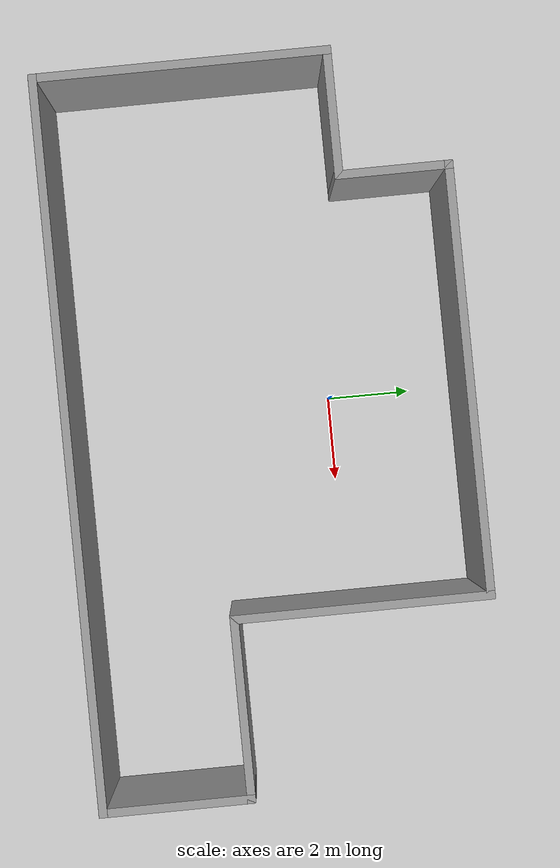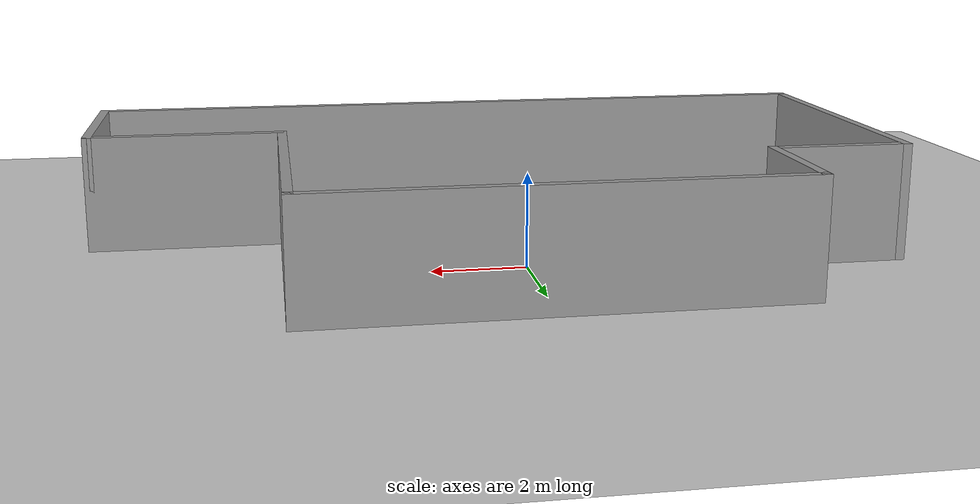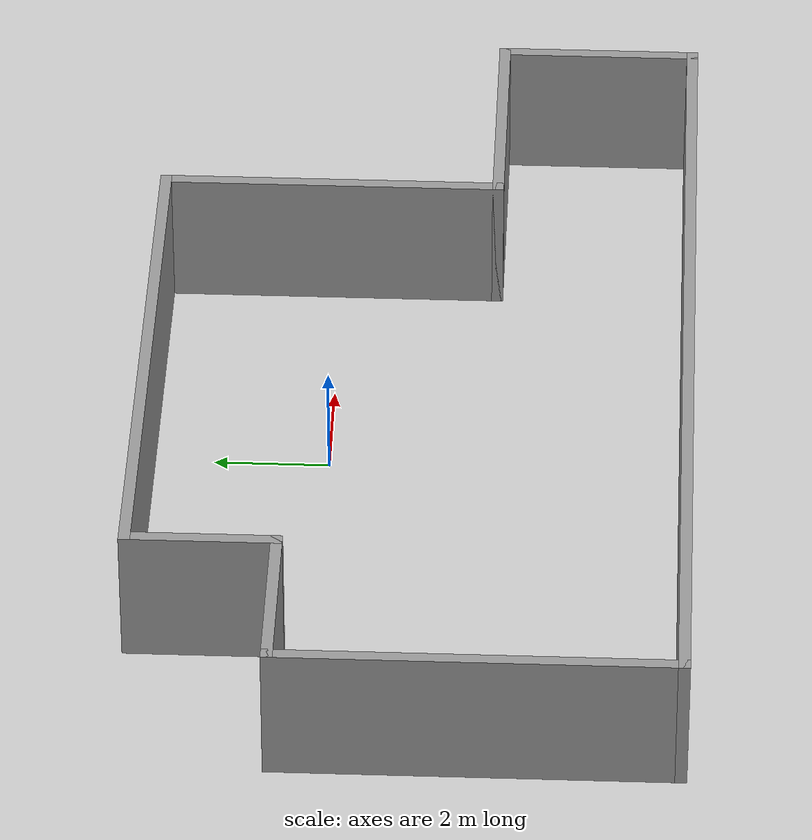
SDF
<sdf version="1.3">
 <world name="default">
  <light name="sun" type="directional">
   <pose>0.000000 0.000000 10.000000 0.000000 0.000000 0.000000</pose>
   <diffuse>0.800000 0.800000 0.800000 1.000000</diffuse>
   <specular>0.100000 0.100000 0.100000 1.000000</specular>
   <attenuation>
    <range>1000.000000</range>
    <constant>0.900000</constant>
    <linear>0.010000</linear>
    <quadratic>0.001000</quadratic>
   </attenuation>
   <direction>-0.500000 0.500000 -1.000000</direction>
  </light>
  <model name="ground_plane">
   <static>1</static>
   <link name="link">
    <collision name="collision">
     <geometry>
      <plane><normal>0.000000 0.000000 1.000000</normal><size>100.000000 100.000000</size></plane>
     </geometry>
     <surface><friction><ode><mu>100.000000</mu><mu2>50.000000</mu2></ode></friction></surface>
    </collision>
    <visual name="visual">
     <cast_shadows>0</cast_shadows>
     <geometry>
      <plane><normal>0.000000 0.000000 1.000000</normal><size>100.000000 100.000000</size></plane>
     </geometry>
     <material>
      <script><uri>file://media/materials/scripts/gazebo.material</uri><name>Gazebo/Grey</name></script>
     </material>
    </visual>
    <velocity_decay><linear>0.000000</linear><angular>0.000000</angular></velocity_decay>
   </link>
  </model>
  <physics type="ode">
   <update_rate>1000.000000</update_rate>
   <gravity>0.000000 0.000000 -9.800000</gravity>
  </physics>
  <scene>
   <ambient>0.200000 0.200000 0.200000 1.000000</ambient>
   <background>0.700000 0.700000 0.700000 1.000000</background>
   <shadows>1</shadows>
  </scene>
  <model name="simple">
   <link name="Wall_1">
    <collision name="Wall_1_Collision">
     <geometry><box><size>10.120400 0.200000 2.500000</size></box></geometry>
     <pose>0.000000 0.000000 1.250000 0.000000 0.000000 0.000000</pose>
    </collision>
    <visual name="Wall_1_Visual">
     <pose>0.000000 0.000000 1.250000 0.000000 0.000000 0.000000</pose>
     <geometry><box><size>10.120400 0.200000 2.500000</size></box></geometry>
     <material>
      <script><uri>file://media/materials/scripts/gazebo.material</uri><name>Gazebo/Grey</name></script>
     </material>
    </visual>
    <velocity_decay><linear>0.000000</linear><angular>0.000000</angular></velocity_decay>
    <pose>-0.058949 3.136090 0.000000 0.000000 0.000000 0.000000</pose>
   </link>
   <link name="Wall_2">
    <collision name="Wall_2_Collision">
     <geometry><box><size>6.110030 0.200000 2.500000</size></box></geometry>
     <pose>0.000000 0.000000 1.250000 0.000000 0.000000 0.000000</pose>
    </collision>
    <visual name="Wall_2_Visual">
     <pose>0.000000 0.000000 1.250000 0.000000 0.000000 0.000000</pose>
     <geometry><box><size>6.110030 0.200000 2.500000</size></box></geometry>
     <material>
      <script><uri>file://media/materials/scripts/gazebo.material</uri><name>Gazebo/Grey</name></script>
     </material>
    </visual>
    <velocity_decay><linear>0.000000</linear><angular>0.000000</angular></velocity_decay>
    <pose>4.901260 0.181073 0.000000 0.000000 0.000000 -1.570800</pose>
   </link>
   <link name="Wall_3">
    <collision name="Wall_3_Collision">
     <geometry><box><size>4.315920 0.200000 2.500000</size></box></geometry>
     <pose>0.000000 0.000000 1.250000 0.000000 0.000000 0.000000</pose>
    </collision>
    <visual name="Wall_3_Visual">
     <pose>0.000000 0.000000 1.250000 0.000000 0.000000 0.000000</pose>
     <geometry><box><size>4.315920 0.200000 2.500000</size></box></geometry>
     <material>
      <script><uri>file://media/materials/scripts/gazebo.material</uri><name>Gazebo/Grey</name></script>
     </material>
    </visual>
    <velocity_decay><linear>0.000000</linear><angular>0.000000</angular></velocity_decay>
    <pose>6.959210 -2.773940 0.000000 0.000000 0.000000 0.000000</pose>
   </link>
   <link name="Wall_4">
    <collision name="Wall_4_Collision">
     <geometry><box><size>3.612340 0.200000 2.500000</size></box></geometry>
     <pose>0.000000 0.000000 1.250000 0.000000 0.000000 0.000000</pose>
    </collision>
    <visual name="Wall_4_Visual">
     <pose>0.000000 0.000000 1.250000 0.000000 0.000000 0.000000</pose>
     <geometry><box><size>3.612340 0.200000 2.500000</size></box></geometry>
     <material>
      <script><uri>file://media/materials/scripts/gazebo.material</uri><name>Gazebo/Grey</name></script>
     </material>
    </visual>
    <velocity_decay><linear>0.000000</linear><angular>0.000000</angular></velocity_decay>
    <pose>9.017170 -4.480110 0.000000 0.000000 0.000000 -1.570800</pose>
   </link>
   <link name="Wall_5">
    <collision name="Wall_5_Collision">
     <geometry><box><size>17.121000 0.200000 2.500000</size></box></geometry>
     <pose>0.000000 0.000000 1.250000 0.000000 0.000000 0.000000</pose>
    </collision>
    <visual name="Wall_5_Visual">
     <pose>0.000000 0.000000 1.250000 0.000000 0.000000 0.000000</pose>
     <geometry><box><size>17.121000 0.200000 2.500000</size></box></geometry>
     <material>
      <script><uri>file://media/materials/scripts/gazebo.material</uri><name>Gazebo/Grey</name></script>
     </material>
    </visual>
    <velocity_decay><linear>0.000000</linear><angular>0.000000</angular></velocity_decay>
    <pose>0.556679 -6.186280 0.000000 0.000000 0.000000 3.141590</pose>
   </link>
   <link name="Wall_6">
    <collision name="Wall_6_Collision">
     <geometry><box><size>6.989500 0.200000 2.500000</size></box></geometry>
     <pose>0.000000 0.000000 1.250000 0.000000 0.000000 0.000000</pose>
    </collision>
    <visual name="Wall_6_Visual">
     <pose>0.000000 0.000000 1.250000 0.000000 0.000000 0.000000</pose>
     <geometry><box><size>6.989500 0.200000 2.500000</size></box></geometry>
     <material>
      <script><uri>file://media/materials/scripts/gazebo.material</uri><name>Gazebo/Grey</name></script>
     </material>
    </visual>
    <velocity_decay><linear>0.000000</linear><angular>0.000000</angular></velocity_decay>
    <pose>-7.903810 -2.791530 0.000000 0.000000 0.000000 1.570800</pose>
   </link>
   <link name="Wall_7">
    <collision name="Wall_7_Collision">
     <geometry><box><size>3.084660 0.200000 2.500000</size></box></geometry>
     <pose>0.000000 0.000000 1.250000 0.000000 0.000000 0.000000</pose>
    </collision>
    <visual name="Wall_7_Visual">
     <pose>0.000000 0.000000 1.250000 0.000000 0.000000 0.000000</pose>
     <geometry><box><size>3.084660 0.200000 2.500000</size></box></geometry>
     <material>
      <script><uri>file://media/materials/scripts/gazebo.material</uri><name>Gazebo/Grey</name></script>
     </material>
    </visual>
    <velocity_decay><linear>0.000000</linear><angular>0.000000</angular></velocity_decay>
    <pose>-6.461480 0.603218 0.000000 0.000000 0.000000 0.000000</pose>
   </link>
   <link name="Wall_8">
    <collision name="Wall_8_Collision">
     <geometry><box><size>2.732870 0.200000 2.500000</size></box></geometry>
     <pose>0.000000 0.000000 1.250000 0.000000 0.000000 0.000000</pose>
    </collision>
    <visual name="Wall_8_Visual">
     <pose>0.000000 0.000000 1.250000 0.000000 0.000000 0.000000</pose>
     <geometry><box><size>2.732870 0.200000 2.500000</size></box></geometry>
     <material>
      <script><uri>file://media/materials/scripts/gazebo.material</uri><name>Gazebo/Grey</name></script>
     </material>
    </visual>
    <velocity_decay><linear>0.000000</linear><angular>0.000000</angular></velocity_decay>
    <pose>-5.019150 1.869650 0.000000 0.000000 0.000000 1.570800</pose>
   </link>
   <static>1</static>
  </model>
 </world>
</sdf>
